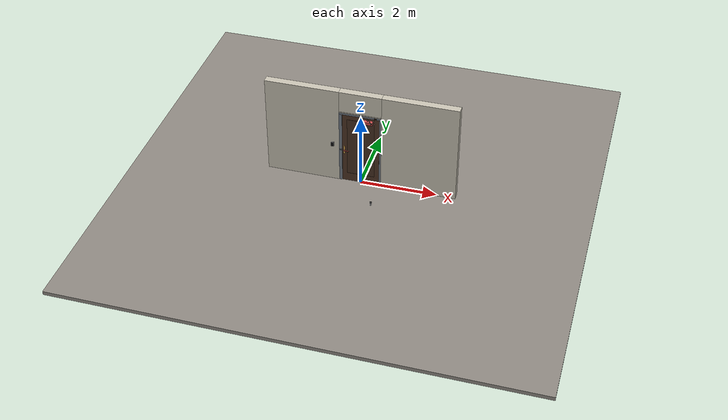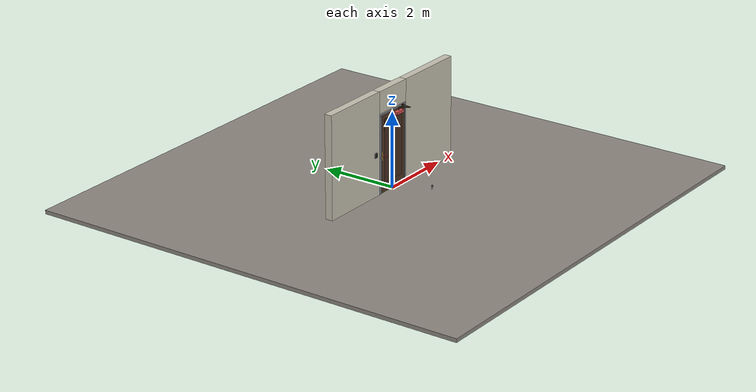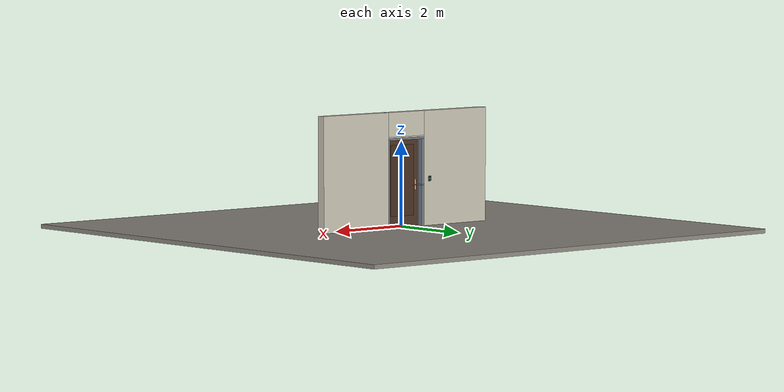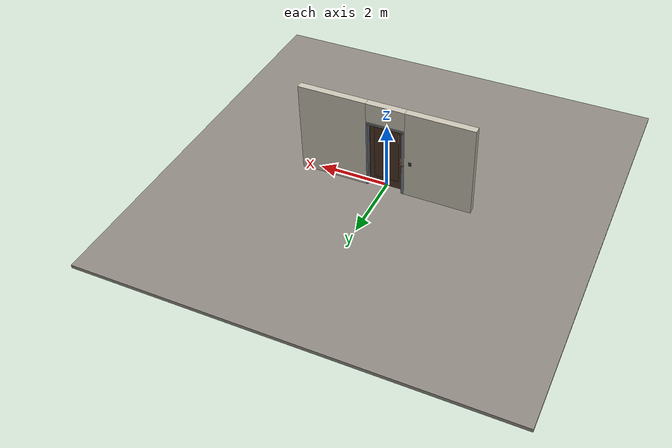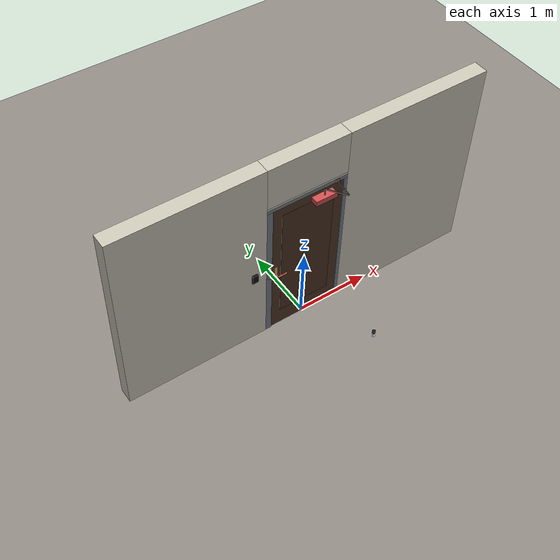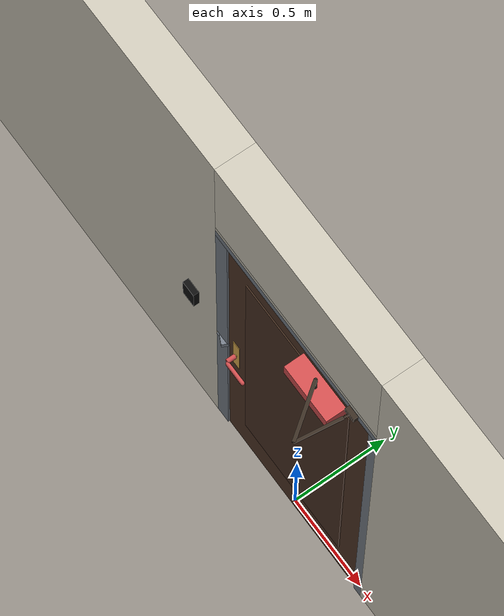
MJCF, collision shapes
<?xml version="1.0" ?>
<mujoco model="db0160_swing_single_full">
  <compiler angle="radian" meshdir="../../hardware" texturedir="../../textures" autolimits="true" inertiafromgeom="false"/>
  <option timestep="0.002" integrator="implicitfast" cone="elliptic" impratio="10" noslip_iterations="3">
    <flag multiccd="enable"/>
  </option>
  <size memory="16M"/>
  <default>
    <geom condim="4" solref="0.005 1" solimp="0.95 0.99 0.001"/>
    <joint solreflimit="0.005 1" solimplimit="0.95 0.99 0.001"/>
    <tendon solreflimit="0.005 1"/>
    <equality solref="0.002 1"/>
  </default>
  <visual>
    <headlight ambient="0.4 0.4 0.4" diffuse="0.7 0.7 0.7" specular="0.2 0.2 0.2"/>
    <quality shadowsize="4096"/>
    <map znear="0.01" zfar="60"/>
  </visual>
  <asset>
    <mesh name="closer_body_fdc4667657" file="closer_body_fdc4667657.obj"/>
    <mesh name="hinge_e22b26c0c1" file="hinge_e22b26c0c1.obj"/>
    <mesh name="hinge_jamb_e1d088f8dc" file="hinge_jamb_e1d088f8dc.obj"/>
    <mesh name="lever_6fbb1e9593" file="lever_6fbb1e9593.obj"/>
    <material name="mat_floor" rgba="0.55 0.53 0.5 1" specular="0.2" shininess="0.15" reflectance="0"/>
    <material name="mat_wall" rgba="0.78 0.76 0.7 1" specular="0.2" shininess="0.1" reflectance="0"/>
    <material name="mat_leaf" rgba="0.3 0.2 0.14 1" specular="0.2" shininess="0.46" reflectance="0"/>
    <material name="mat_leaf_panel" rgba="0.276 0.184 0.129 1" specular="0.2" shininess="0.46" reflectance="0"/>
    <material name="mat_hinge" rgba="0.65 0.66 0.68 1" specular="0.74" shininess="0.5" reflectance="0.36"/>
    <material name="mat_op_brass" rgba="0.85 0.66 0.3 1" specular="0.8" shininess="0.75" reflectance="0.4"/>
    <material name="mat_trim" rgba="0.85 0.66 0.3 1" specular="0.8" shininess="0.75" reflectance="0.4"/>
    <material name="mat_bolt" rgba="0.75 0.76 0.77 1" specular="0.8" shininess="0.65" reflectance="0.4"/>
    <material name="mat_frame" rgba="0.45 0.48 0.52 1" specular="0.32" shininess="0.6" reflectance="0.08"/>
    <material name="mat_closer" rgba="0.22 0.17 0.13 1" specular="0.8" shininess="0.6" reflectance="0.4"/>
    <material name="mat_wallreader" rgba="0.05 0.05 0.05 1" specular="0.38" shininess="0.3" reflectance="0.12"/>
    <material name="mat_rex" rgba="0.1 0.6 0.2 1" specular="0.2" shininess="0.6" reflectance="0"/>
    <material name="mat_bumper_stop" rgba="0.08 0.08 0.08 1" specular="0.2" shininess="0.1" reflectance="0"/>
    <material name="mat_stop_base" rgba="0.9 0.9 0.92 1" specular="0.8" shininess="0.9" reflectance="0.4"/>
    <texture name="skybox" type="skybox" builtin="gradient" rgb1="0.6 0.7 0.85" rgb2="0.9 0.92 0.95" width="256" height="256"/>
  </asset>
  <worldbody>
    <light name="sun" pos="1.5 -2.5 4" dir="-0.3 0.5 -0.8" directional="true" diffuse="0.8 0.8 0.8" specular="0.3 0.3 0.3" castshadow="true"/>
    <light name="fill" pos="-1.5 2.5 3" dir="0.3 -0.5 -0.7" directional="true" diffuse="0.35 0.35 0.4" castshadow="false"/>
    <camera name="robot_view" pos="0 -2.471187 1.734312" xyaxes="1 0 0 0 0.26963 0.962964" fovy="52"/>
    <camera name="far_view" pos="0 2.613187 1.734312" xyaxes="-1 0 0 0 -0.26963 0.962964" fovy="52"/>
    <camera name="iso" pos="-1.932062 -2.064437 2.141063" xyaxes="0.741536 -0.670913 0 0.242917 0.268487 0.932151" fovy="46"/>
    <camera name="detail_handle" pos="-0.143 -0.877 1.245" xyaxes="0.97561 0.219512 0 -0.070934 0.315262 0.94635" fovy="38"/>
    <geom name="floor" type="box" size="6 6 0.05" pos="0 0 -0.05" material="mat_floor" group="0" contype="1" conaffinity="1" friction="0.8 0.005 0.0001" density="2400"/>
    <geom name="wall_left" type="box" size="0.967 0.1 1.35" pos="-1.533 0.071 1.35" material="mat_wall" group="0" contype="1" conaffinity="1" friction="0.6 0.005 0.0001" density="800"/>
    <geom name="wall_right" type="box" size="0.982 0.1 1.35" pos="1.518 0.071 1.35" material="mat_wall" group="0" contype="1" conaffinity="1" friction="0.6 0.005 0.0001" density="800"/>
    <geom name="wall_header" type="box" size="0.551 0.1 0.2875" pos="-0.015 0.071 2.4125" material="mat_wall" group="0" contype="1" conaffinity="1" friction="0.6 0.005 0.0001" density="800"/>
    <geom name="hinge_0_jamb" type="mesh" mesh="hinge_jamb_e1d088f8dc" pos="0.483 -0.029 0.259" quat="0 0 1 0" material="mat_hinge" group="1" contype="0" conaffinity="0" density="7850"/>
    <geom name="hinge_1_jamb" type="mesh" mesh="hinge_jamb_e1d088f8dc" pos="0.483 -0.029 1.025" quat="0 0 1 0" material="mat_hinge" group="1" contype="0" conaffinity="0" density="7850"/>
    <geom name="hinge_2_jamb" type="mesh" mesh="hinge_jamb_e1d088f8dc" pos="0.483 -0.029 1.861" quat="0 0 1 0" material="mat_hinge" group="1" contype="0" conaffinity="0" density="7850"/>
    <geom name="jamb_hinge" type="box" size="0.025 0.1 1.0225" pos="0.511 0.071 1.0225" material="mat_frame" group="0" contype="1" conaffinity="1" friction="0.6 0.005 0.0001" density="300"/>
    <geom name="strike_965_wall_n" type="box" size="0.04 0.08225 0.015" pos="-0.526 0.08875 0.965" material="mat_frame" group="0" contype="1" conaffinity="1" friction="0.6 0.005 0.0001" density="300"/>
    <geom name="strike_965_wall_p" type="box" size="0.04 0.008 0.015" pos="-0.526 -0.0145 0.965" material="mat_frame" group="0" contype="1" conaffinity="1" friction="0.6 0.005 0.0001" density="300"/>
    <geom name="strike_965_ramp" type="box" size="0.04 0.016771 0.015" pos="-0.529277 -0.019611 0.965" quat="0.973249 0 0 -0.229753" material="mat_frame" group="0" contype="1" conaffinity="1" friction="0.12 0.005 0.0001" density="300"/>
    <geom name="strike_965_back" type="box" size="0.031 0.0065 0.015" pos="-0.535 0 0.965" material="mat_frame" group="0" contype="1" conaffinity="1" friction="0.6 0.005 0.0001" density="300"/>
    <geom name="jamb_strike_0" type="box" size="0.04 0.1 0.475" pos="-0.526 0.071 0.475" material="mat_frame" group="0" contype="1" conaffinity="1" friction="0.6 0.005 0.0001" density="300"/>
    <geom name="jamb_strike_1" type="box" size="0.04 0.1 0.5325" pos="-0.526 0.071 1.5125" material="mat_frame" group="0" contype="1" conaffinity="1" friction="0.6 0.005 0.0001" density="300"/>
    <geom name="jamb_head" type="box" size="0.551 0.1 0.025" pos="-0.015 0.071 2.07" material="mat_frame" group="0" contype="1" conaffinity="1" friction="0.6 0.005 0.0001" density="300"/>
    <geom name="head_stud" type="box" size="0.551 0.1 0.015" pos="-0.015 0.071 2.11" material="mat_wall" group="0" contype="1" conaffinity="1" friction="0.6 0.005 0.0001" density="500"/>
    <geom name="stop_hinge" type="box" size="0.0055 0.016 1.0225" pos="0.4805 0.0385 1.0225" material="mat_frame" group="0" contype="1" conaffinity="1" friction="0.6 0.005 0.0001" density="300"/>
    <geom name="stop_strike" type="box" size="0.0055 0.016 1.0225" pos="-0.4805 0.0385 1.0225" material="mat_frame" group="0" contype="1" conaffinity="1" friction="0.6 0.005 0.0001" density="300"/>
    <geom name="stop_head" type="box" size="0.486 0.016 0.0055" pos="0 0.0385 2.0395" material="mat_frame" group="0" contype="1" conaffinity="1" friction="0.6 0.005 0.0001" density="300"/>
    <geom name="closer_bracket" type="box" size="0.03 0.012 0.014" pos="0.386 -0.041 2.075" material="mat_closer" group="1" contype="0" conaffinity="0" density="2700"/>
    <geom name="wall_reader" type="box" size="0.04 0.015 0.06" pos="-0.736 -0.044 1.1" material="mat_wallreader" group="0" contype="1" conaffinity="1" friction="0.6 0.005 0.0001" density="1000"/>
    <geom name="rex_plate" type="box" size="0.04 0.003 0.06" pos="-0.736 0.174 1.1" material="mat_wallreader" group="1" contype="0" conaffinity="0" density="1000"/>
    <geom name="door_stop_base" type="cylinder" size="0.022 0.003" pos="0.499 -0.84925 0.003" material="mat_stop_base" group="0" contype="1" conaffinity="1" friction="0.6 0.005 0.0001" density="7850"/>
    <geom name="door_stop_post" type="cylinder" size="0.012 0.0245" pos="0.499 -0.84925 0.0305" material="mat_stop_base" group="0" contype="1" conaffinity="1" friction="0.6 0.005 0.0001" density="7850"/>
    <geom name="door_stop_bumper" type="cylinder" size="0.022 0.02" pos="0.499 -0.84925 0.075" material="mat_bumper_stop" group="0" contype="1" conaffinity="1" friction="0.6 0.005 0.0001" density="1100"/>
    <site name="approach_point" pos="0 -1.5 0" quat="1 0 0 0" size="0.05" rgba="0.2 0.9 0.2 0.5" group="4"/>
    <site name="goal_point" pos="0 1.5 0" quat="1 0 0 0" size="0.05" rgba="0.2 0.9 0.2 0.5" group="4"/>
    <site name="door_plane_center" pos="0 0 1.0225" quat="1 0 0 0" size="0.02" rgba="0.2 0.9 0.2 0.5" group="4"/>
    <body name="rex_button" pos="-0.736 0.177 1.1">
      <inertial pos="0 0.004 0" mass="0.010053" quat="0 0 0.707107 -0.707107" diaginertia="0.000001059 0.000001059 0.000002011"/>
      <joint name="rex_button_slide" type="slide" axis="0 -1 0" limited="true" range="0 0.004" damping="1" stiffness="1500" springref="-0.004" armature="0.1"/>
      <geom name="rex_button_geom" type="cylinder" size="0.02 0.004" pos="0 0.004 0" quat="0.707107 -0.707107 0 0" material="mat_rex" group="0" contype="1" conaffinity="1" friction="0.6 0.005 0.0001" density="1000"/>
    </body>
    <body name="leaf" pos="0.486 0 0">
      <inertial pos="-0.444143 -0.014834 1.213821" mass="63.512259" quat="0.520611 -0.518219 -0.46808 -0.491238" diaginertia="4.385596681 26.463264106 30.744302342"/>
      <joint name="leaf_hinge" type="hinge" axis="0 0 1" pos="-0.003 -0.029 0" limited="true" range="0 1.570796" damping="12.318237" frictionloss="0.276848" stiffness="15.508058" springref="-1.827437" armature="0.02"/>
      <geom name="leaf_slab" type="box" size="0.4825 0.022 1.016" pos="-0.4855 0 1.025" material="mat_leaf" group="0" contype="1" conaffinity="1" friction="0.4 0.005 0.0001" density="1"/>
      <geom name="leaf_panel_0_n" type="box" size="0.35635 0.003 0.83344" pos="-0.4855 -0.025 1.08596" material="mat_leaf_panel" group="1" contype="0" conaffinity="0" density="1"/>
      <geom name="leaf_panel_0_p" type="box" size="0.35635 0.003 0.83344" pos="-0.4855 0.025 1.08596" material="mat_leaf_panel" group="1" contype="0" conaffinity="0" density="1"/>
      <geom name="hinge_0" type="mesh" mesh="hinge_e22b26c0c1" pos="-0.003 -0.029 0.259" quat="0 0 1 0" material="mat_hinge" group="1" contype="0" conaffinity="0" density="7850"/>
      <geom name="hinge_1" type="mesh" mesh="hinge_e22b26c0c1" pos="-0.003 -0.029 1.025" quat="0 0 1 0" material="mat_hinge" group="1" contype="0" conaffinity="0" density="7850"/>
      <geom name="hinge_2" type="mesh" mesh="hinge_e22b26c0c1" pos="-0.003 -0.029 1.861" quat="0 0 1 0" material="mat_hinge" group="1" contype="0" conaffinity="0" density="7850"/>
      <geom name="leaf_handle_escutcheon_n" type="box" size="0.0225 0.0015 0.12" pos="-0.913 -0.0235 0.965" material="mat_op_brass" group="1" contype="0" conaffinity="0" density="3000"/>
      <geom name="leaf_handle_escutcheon_p" type="box" size="0.0225 0.0015 0.12" pos="-0.913 0.0235 0.965" material="mat_op_brass" group="1" contype="0" conaffinity="0" density="3000"/>
      <geom name="leaf_latch_bolt_faceplate" type="box" size="0.0006 0.011 0.025" pos="-0.9674 0 0.965" material="mat_bolt" group="1" contype="0" conaffinity="0" density="8500"/>
      <geom name="closer_body" type="mesh" mesh="closer_body_fdc4667657" pos="-0.3 -0.022 1.952" quat="0 0 -0.707107 0.707107" material="mat_closer" group="1" contype="0" conaffinity="0" density="2000"/>
      <geom name="closer_body_col" type="box" size="0.145 0.05 0.035" pos="-0.3 -0.072 1.952" material="mat_closer" group="3" contype="1" conaffinity="1" rgba="0.8 0.3 0.3 0.25" friction="0.6 0.005 0.0001" density="2000"/>
      <geom name="closer_pinion_shaft" type="cylinder" size="0.008 0.0615" pos="-0.3 -0.072 2.0135" material="mat_closer" group="1" contype="0" conaffinity="0" density="2700"/>
      <site name="leaf_edge_mid" pos="-0.968 0 1.016" quat="1 0 0 0" size="0.02" rgba="0.2 0.9 0.2 0.5" group="4"/>
      <body name="leaf_handle" pos="-0.913 0 0.965">
        <inertial pos="0.040022 0 0" mass="0.836698" quat="0.707107 0 0 -0.707107" diaginertia="0.001688823 0.003812607 0.00545529"/>
        <joint name="leaf_handle_hinge" type="hinge" axis="0 1 0" limited="true" range="0 0.7" damping="0.270116" frictionloss="0.064" stiffness="1.4" springref="-0.428571" armature="0.01"/>
        <geom name="leaf_handle_spindle" type="cylinder" size="0.006 0.034" pos="0 0 0" quat="0.707107 -0.707107 0 0" material="mat_op_brass" group="1" contype="0" conaffinity="0" density="7850"/>
        <geom name="leaf_handle_lever_n" type="mesh" mesh="lever_6fbb1e9593" pos="0 -0.022 0" quat="0 0 -0.707107 0.707107" material="mat_op_brass" group="1" contype="0" conaffinity="0" density="3000"/>
        <geom name="leaf_handle_lever_col_n" type="capsule" size="0.01 0.055" pos="0.065 -0.077 0" quat="0.707107 0 0.707107 0" material="mat_op_brass" group="3" contype="1" conaffinity="1" rgba="0.8 0.3 0.3 0.25" friction="0.7 0.01 0.0001" density="3000"/>
        <geom name="leaf_handle_hub_col_n" type="cylinder" size="0.012 0.022" pos="0 -0.052 0" quat="0.707107 -0.707107 0 0" material="mat_op_brass" group="3" contype="1" conaffinity="1" rgba="0.8 0.3 0.3 0.25" friction="0.6 0.005 0.0001" density="3000"/>
        <geom name="leaf_handle_lever_p" type="mesh" mesh="lever_6fbb1e9593" pos="0 0.022 0" quat="0 0 0.707107 0.707107" material="mat_op_brass" group="1" contype="0" conaffinity="0" density="3000"/>
        <geom name="leaf_handle_lever_col_p" type="capsule" size="0.01 0.055" pos="0.065 0.077 0" quat="0.707107 0 0.707107 0" material="mat_op_brass" group="3" contype="1" conaffinity="1" rgba="0.8 0.3 0.3 0.25" friction="0.7 0.01 0.0001" density="3000"/>
        <geom name="leaf_handle_hub_col_p" type="cylinder" size="0.012 0.022" pos="0 0.052 0" quat="0.707107 -0.707107 0 0" material="mat_op_brass" group="3" contype="1" conaffinity="1" rgba="0.8 0.3 0.3 0.25" friction="0.6 0.005 0.0001" density="3000"/>
        <site name="leaf_handle_grip_n" pos="0.104 -0.077 0" quat="1 0 0 0" size="0.012" rgba="0.2 0.9 0.2 0.5" group="4"/>
        <site name="leaf_handle_grip_p" pos="0.104 0.077 0" quat="1 0 0 0" size="0.012" rgba="0.2 0.9 0.2 0.5" group="4"/>
      </body>
      <body name="leaf_latch_bolt" pos="-0.968 0 0.965">
        <inertial pos="0.008 0 0" mass="0.027149" quat="0 0 -0.707107 0.707107" diaginertia="0.000000328 0.000003943 0.000003943"/>
        <joint name="leaf_latch_bolt_slide" type="slide" axis="1 0 0" limited="true" range="0 0.014" damping="2" frictionloss="0.3" stiffness="400" springref="-0.01" armature="0.1"/>
        <geom name="leaf_latch_bolt_capsule" type="capsule" size="0.005 0.017" pos="0.008 0 0" quat="0.707107 0 -0.707107 0" material="mat_bolt" group="0" contype="1" conaffinity="1" friction="0.2 0.005 0.0001" density="8500"/>
      </body>
      <body name="closer_arm_main" pos="-0.3 -0.072 2.075" quat="0.890947 0 0 -0.454107">
        <inertial pos="0.14 0 0" mass="0.12096" quat="1 0 0 0" diaginertia="0.000003588 0.00079128 0.000792852"/>
        <joint name="closer_pinion" type="hinge" axis="0 0 1" limited="false" damping="0.01" armature="0.002"/>
        <geom name="closer_arm_main_geom" type="box" size="0.14 0.008 0.005" pos="0.14 0 0" material="mat_closer" group="1" contype="0" conaffinity="0" density="2700"/>
        <body name="closer_arm_fore" pos="0.28 0 0" quat="0.373215 0 0 0.927745">
          <inertial pos="0.128088 0 0" mass="0.076531" quat="1 0 0 0" diaginertia="0.000001771 0.000437665 0.000438201"/>
          <joint name="closer_elbow" type="hinge" axis="0 0 1" limited="false" damping="0.01" armature="0.002"/>
          <geom name="closer_arm_fore_geom" type="box" size="0.1125 0.007 0.004" pos="0.1125 0 0" material="mat_closer" group="1" contype="0" conaffinity="0" density="2700"/>
          <geom name="closer_fore_neck" type="box" size="0.0175 0.003 0.003" pos="0.2425 0 0" material="mat_closer" group="1" contype="0" conaffinity="0" density="2700"/>
          <geom name="closer_fore_pivot" type="cylinder" size="0.005 0.012" pos="0.26 0 0" material="mat_closer" group="1" contype="0" conaffinity="0" density="2700"/>
        </body>
      </body>
    </body>
  </worldbody>
  <tendon>
    <fixed name="leaf_latch_bolt_coupling" limited="true" range="0 10">
      <joint joint="leaf_latch_bolt_slide" coef="1"/>
      <joint joint="leaf_handle_hinge" coef="-0.021212"/>
    </fixed>
  </tendon>
  <equality>
    <connect name="closer_arm_connect" body1="closer_arm_fore" body2="world" anchor="0.26 0 0" active="true"/>
  </equality>
  <contact>
    <exclude body1="closer_arm_main" body2="leaf"/>
    <exclude body1="closer_arm_fore" body2="leaf"/>
    <exclude body1="closer_arm_main" body2="closer_arm_fore"/>
  </contact>
  <sensor>
    <jointpos name="leaf_hinge_pos" joint="leaf_hinge"/>
    <jointvel name="leaf_hinge_vel" joint="leaf_hinge"/>
    <jointpos name="leaf_handle_hinge_pos" joint="leaf_handle_hinge"/>
    <jointvel name="leaf_handle_hinge_vel" joint="leaf_handle_hinge"/>
    <jointpos name="leaf_latch_bolt_slide_pos" joint="leaf_latch_bolt_slide"/>
    <jointvel name="leaf_latch_bolt_slide_vel" joint="leaf_latch_bolt_slide"/>
    <jointpos name="rex_button_slide_pos" joint="rex_button_slide"/>
    <jointvel name="rex_button_slide_vel" joint="rex_button_slide"/>
  </sensor>
</mujoco>
